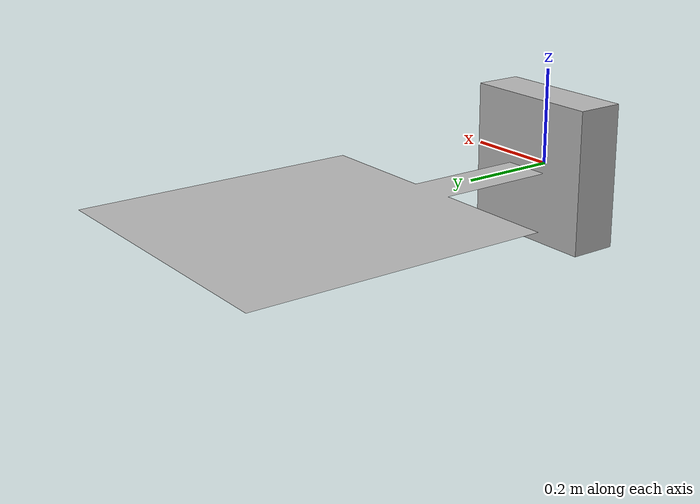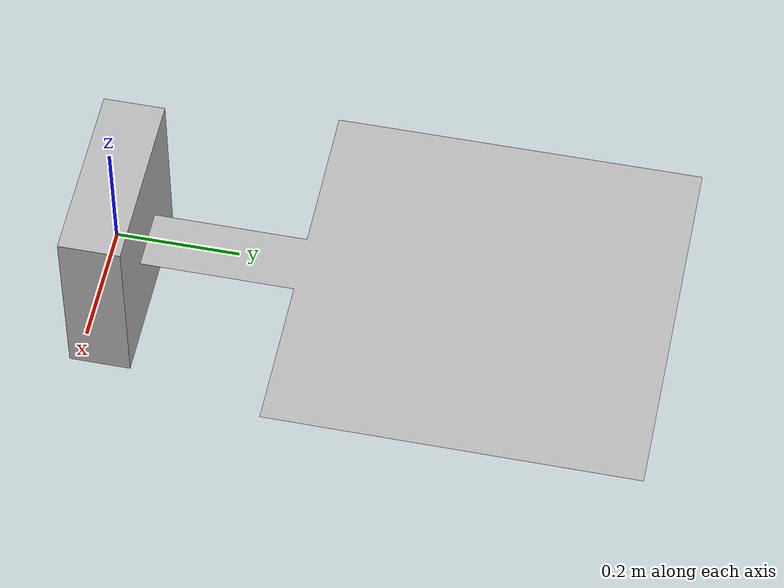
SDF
<?xml version="1.0" ?>
<sdf version="1.5">
  <model name="wall_vineyard">

    <pose>0 0 0  0 0 0</pose>

    <static>true</static>
    <link name="link">
      <inertial>
        <mass>50</mass>
        <inertia>
          <ixx>1</ixx>
          <ixy>0</ixy>
          <ixz>0</ixz>
          <iyy>1</iyy>
          <iyz>0</iyz>
          <izz>1</izz>
        </inertia>
      </inertial>

      <collision name="collision">
	    <pose>0 0 0  0 0 0</pose>
        <geometry>
          <mesh>
            <uri>model://aruco1/meshes/aruco_marker.obj</uri>
          </mesh>
        </geometry>
      </collision>
      <visual name="visual">
        <geometry>
          <mesh>
            <uri>model://aruco1/meshes/aruco_marker.obj</uri>
          </mesh>
        </geometry>
      </visual>
    </link>
  </model>
</sdf>
